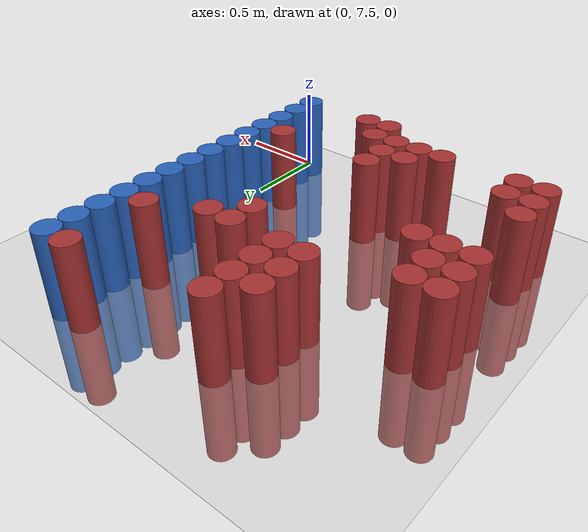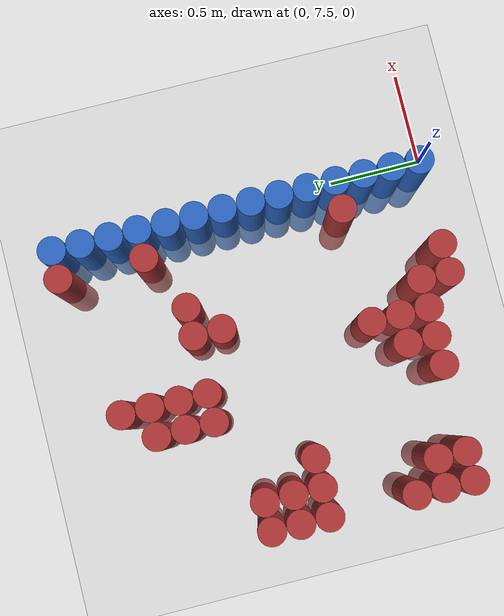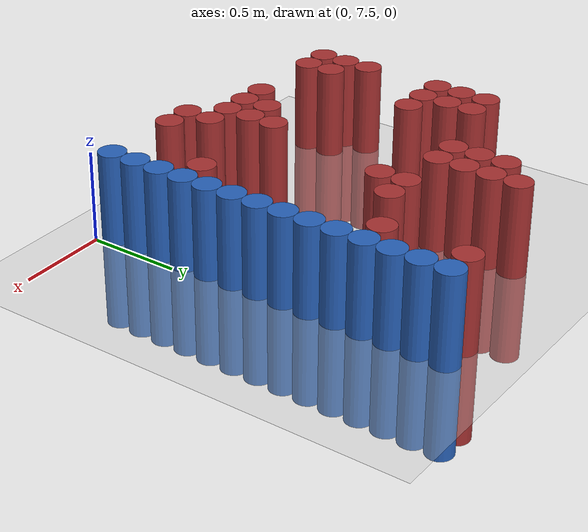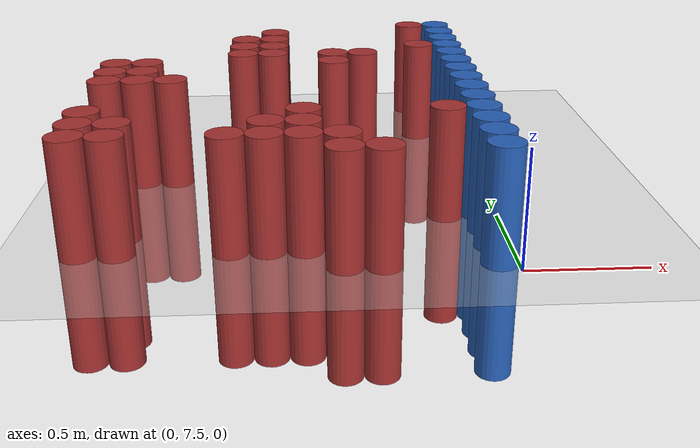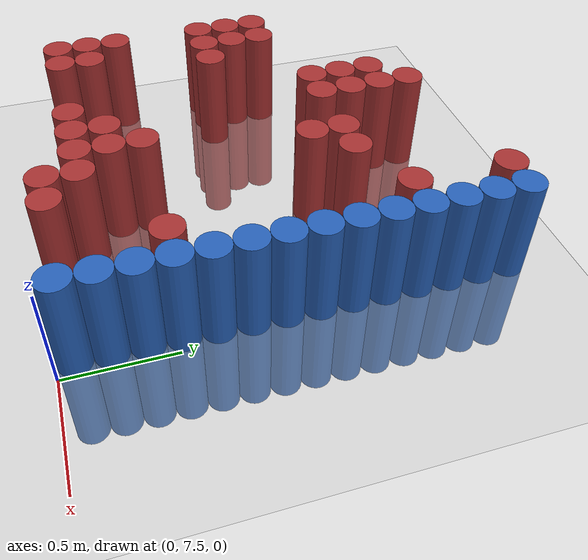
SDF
<sdf version="1.6">
 <world name="default">
  <model name="ground_plane">
   <static>1</static>
   <link name="link">
    <collision name="collision">
     <geometry><plane><normal>0 0 1</normal><size>100 100</size></plane></geometry>
     <surface><friction><ode><mu>100</mu><mu2>50</mu2></ode></friction></surface>
    </collision>
    <visual name="visual">
     <cast_shadows>0</cast_shadows>
     <geometry><plane><normal>0 0 1</normal><size>100 100</size></plane></geometry>
     <material>
      <script><uri>file://media/materials/scripts/gazebo.material</uri><name>Gazebo/Grey</name></script>
     </material>
    </visual>
   </link>
  </model>
  <model name="unit_cylinder_215">
   <static>1</static>
   <pose>-1.725000 7.725000 0.000000 0.000000 0.000000 0.000000</pose>
   <link name="link">
    <inertial>
     <mass>1</mass>
     <inertia><ixx>0.145833</ixx><ixy>0</ixy><ixz>0</ixz><iyy>0.145833</iyy><iyz>0</iyz><izz>0.125</izz></inertia>
    </inertial>
    <collision name="collision">
     <geometry><cylinder><radius>0.075000</radius><length>1</length></cylinder></geometry>
    </collision>
    <visual name="visual">
     <geometry><cylinder><radius>0.075000</radius><length>1</length></cylinder></geometry>
     <material>
      <ambient>0.648000 0.192000 0.192000 1</ambient>
      <diffuse>0.648000 0.192000 0.192000 1</diffuse>
     </material>
     <material>
      <script><name>Gazebo/Grey</name><uri>file://media/materials/scripts/gazebo.material</uri></script>
     </material>
    </visual>
   </link>
  </model>
  <model name="unit_cylinder_216">
   <static>1</static>
   <pose>-1.725000 7.875000 0.000000 0.000000 0.000000 0.000000</pose>
   <link name="link">
    <inertial>
     <mass>1</mass>
     <inertia><ixx>0.145833</ixx><ixy>0</ixy><ixz>0</ixz><iyy>0.145833</iyy><iyz>0</iyz><izz>0.125</izz></inertia>
    </inertial>
    <collision name="collision">
     <geometry><cylinder><radius>0.075000</radius><length>1</length></cylinder></geometry>
    </collision>
    <visual name="visual">
     <geometry><cylinder><radius>0.075000</radius><length>1</length></cylinder></geometry>
     <material>
      <ambient>0.648000 0.192000 0.192000 1</ambient>
      <diffuse>0.648000 0.192000 0.192000 1</diffuse>
     </material>
     <material>
      <script><name>Gazebo/Grey</name><uri>file://media/materials/scripts/gazebo.material</uri></script>
     </material>
    </visual>
   </link>
  </model>
  <model name="unit_cylinder_217">
   <static>1</static>
   <pose>-1.725000 8.025000 0.000000 0.000000 0.000000 0.000000</pose>
   <link name="link">
    <inertial>
     <mass>1</mass>
     <inertia><ixx>0.145833</ixx><ixy>0</ixy><ixz>0</ixz><iyy>0.145833</iyy><iyz>0</iyz><izz>0.125</izz></inertia>
    </inertial>
    <collision name="collision">
     <geometry><cylinder><radius>0.075000</radius><length>1</length></cylinder></geometry>
    </collision>
    <visual name="visual">
     <geometry><cylinder><radius>0.075000</radius><length>1</length></cylinder></geometry>
     <material>
      <ambient>0.648000 0.192000 0.192000 1</ambient>
      <diffuse>0.648000 0.192000 0.192000 1</diffuse>
     </material>
     <material>
      <script><name>Gazebo/Grey</name><uri>file://media/materials/scripts/gazebo.material</uri></script>
     </material>
    </visual>
   </link>
  </model>
  <model name="unit_cylinder_218">
   <static>1</static>
   <pose>-1.725000 8.475000 0.000000 0.000000 0.000000 0.000000</pose>
   <link name="link">
    <inertial>
     <mass>1</mass>
     <inertia><ixx>0.145833</ixx><ixy>0</ixy><ixz>0</ixz><iyy>0.145833</iyy><iyz>0</iyz><izz>0.125</izz></inertia>
    </inertial>
    <collision name="collision">
     <geometry><cylinder><radius>0.075000</radius><length>1</length></cylinder></geometry>
    </collision>
    <visual name="visual">
     <geometry><cylinder><radius>0.075000</radius><length>1</length></cylinder></geometry>
     <material>
      <ambient>0.648000 0.192000 0.192000 1</ambient>
      <diffuse>0.648000 0.192000 0.192000 1</diffuse>
     </material>
     <material>
      <script><name>Gazebo/Grey</name><uri>file://media/materials/scripts/gazebo.material</uri></script>
     </material>
    </visual>
   </link>
  </model>
  <model name="unit_cylinder_219">
   <static>1</static>
   <pose>-1.725000 8.625000 0.000000 0.000000 0.000000 0.000000</pose>
   <link name="link">
    <inertial>
     <mass>1</mass>
     <inertia><ixx>0.145833</ixx><ixy>0</ixy><ixz>0</ixz><iyy>0.145833</iyy><iyz>0</iyz><izz>0.125</izz></inertia>
    </inertial>
    <collision name="collision">
     <geometry><cylinder><radius>0.075000</radius><length>1</length></cylinder></geometry>
    </collision>
    <visual name="visual">
     <geometry><cylinder><radius>0.075000</radius><length>1</length></cylinder></geometry>
     <material>
      <ambient>0.648000 0.192000 0.192000 1</ambient>
      <diffuse>0.648000 0.192000 0.192000 1</diffuse>
     </material>
     <material>
      <script><name>Gazebo/Grey</name><uri>file://media/materials/scripts/gazebo.material</uri></script>
     </material>
    </visual>
   </link>
  </model>
  <model name="unit_cylinder_220">
   <static>1</static>
   <pose>-1.725000 8.775000 0.000000 0.000000 0.000000 0.000000</pose>
   <link name="link">
    <inertial>
     <mass>1</mass>
     <inertia><ixx>0.145833</ixx><ixy>0</ixy><ixz>0</ixz><iyy>0.145833</iyy><iyz>0</iyz><izz>0.125</izz></inertia>
    </inertial>
    <collision name="collision">
     <geometry><cylinder><radius>0.075000</radius><length>1</length></cylinder></geometry>
    </collision>
    <visual name="visual">
     <geometry><cylinder><radius>0.075000</radius><length>1</length></cylinder></geometry>
     <material>
      <ambient>0.648000 0.192000 0.192000 1</ambient>
      <diffuse>0.648000 0.192000 0.192000 1</diffuse>
     </material>
     <material>
      <script><name>Gazebo/Grey</name><uri>file://media/materials/scripts/gazebo.material</uri></script>
     </material>
    </visual>
   </link>
  </model>
  <model name="unit_cylinder_223">
   <static>1</static>
   <pose>-1.575000 7.725000 0.000000 0.000000 0.000000 0.000000</pose>
   <link name="link">
    <inertial>
     <mass>1</mass>
     <inertia><ixx>0.145833</ixx><ixy>0</ixy><ixz>0</ixz><iyy>0.145833</iyy><iyz>0</iyz><izz>0.125</izz></inertia>
    </inertial>
    <collision name="collision">
     <geometry><cylinder><radius>0.075000</radius><length>1</length></cylinder></geometry>
    </collision>
    <visual name="visual">
     <geometry><cylinder><radius>0.075000</radius><length>1</length></cylinder></geometry>
     <material>
      <ambient>0.648000 0.192000 0.192000 1</ambient>
      <diffuse>0.648000 0.192000 0.192000 1</diffuse>
     </material>
     <material>
      <script><name>Gazebo/Grey</name><uri>file://media/materials/scripts/gazebo.material</uri></script>
     </material>
    </visual>
   </link>
  </model>
  <model name="unit_cylinder_224">
   <static>1</static>
   <pose>-1.575000 7.875000 0.000000 0.000000 0.000000 0.000000</pose>
   <link name="link">
    <inertial>
     <mass>1</mass>
     <inertia><ixx>0.145833</ixx><ixy>0</ixy><ixz>0</ixz><iyy>0.145833</iyy><iyz>0</iyz><izz>0.125</izz></inertia>
    </inertial>
    <collision name="collision">
     <geometry><cylinder><radius>0.075000</radius><length>1</length></cylinder></geometry>
    </collision>
    <visual name="visual">
     <geometry><cylinder><radius>0.075000</radius><length>1</length></cylinder></geometry>
     <material>
      <ambient>0.648000 0.192000 0.192000 1</ambient>
      <diffuse>0.648000 0.192000 0.192000 1</diffuse>
     </material>
     <material>
      <script><name>Gazebo/Grey</name><uri>file://media/materials/scripts/gazebo.material</uri></script>
     </material>
    </visual>
   </link>
  </model>
  <model name="unit_cylinder_225">
   <static>1</static>
   <pose>-1.575000 8.475000 0.000000 0.000000 0.000000 0.000000</pose>
   <link name="link">
    <inertial>
     <mass>1</mass>
     <inertia><ixx>0.145833</ixx><ixy>0</ixy><ixz>0</ixz><iyy>0.145833</iyy><iyz>0</iyz><izz>0.125</izz></inertia>
    </inertial>
    <collision name="collision">
     <geometry><cylinder><radius>0.075000</radius><length>1</length></cylinder></geometry>
    </collision>
    <visual name="visual">
     <geometry><cylinder><radius>0.075000</radius><length>1</length></cylinder></geometry>
     <material>
      <ambient>0.648000 0.192000 0.192000 1</ambient>
      <diffuse>0.648000 0.192000 0.192000 1</diffuse>
     </material>
     <material>
      <script><name>Gazebo/Grey</name><uri>file://media/materials/scripts/gazebo.material</uri></script>
     </material>
    </visual>
   </link>
  </model>
  <model name="unit_cylinder_226">
   <static>1</static>
   <pose>-1.575000 8.625000 0.000000 0.000000 0.000000 0.000000</pose>
   <link name="link">
    <inertial>
     <mass>1</mass>
     <inertia><ixx>0.145833</ixx><ixy>0</ixy><ixz>0</ixz><iyy>0.145833</iyy><iyz>0</iyz><izz>0.125</izz></inertia>
    </inertial>
    <collision name="collision">
     <geometry><cylinder><radius>0.075000</radius><length>1</length></cylinder></geometry>
    </collision>
    <visual name="visual">
     <geometry><cylinder><radius>0.075000</radius><length>1</length></cylinder></geometry>
     <material>
      <ambient>0.648000 0.192000 0.192000 1</ambient>
      <diffuse>0.648000 0.192000 0.192000 1</diffuse>
     </material>
     <material>
      <script><name>Gazebo/Grey</name><uri>file://media/materials/scripts/gazebo.material</uri></script>
     </material>
    </visual>
   </link>
  </model>
  <model name="unit_cylinder_227">
   <static>1</static>
   <pose>-1.575000 8.775000 0.000000 0.000000 0.000000 0.000000</pose>
   <link name="link">
    <inertial>
     <mass>1</mass>
     <inertia><ixx>0.145833</ixx><ixy>0</ixy><ixz>0</ixz><iyy>0.145833</iyy><iyz>0</iyz><izz>0.125</izz></inertia>
    </inertial>
    <collision name="collision">
     <geometry><cylinder><radius>0.075000</radius><length>1</length></cylinder></geometry>
    </collision>
    <visual name="visual">
     <geometry><cylinder><radius>0.075000</radius><length>1</length></cylinder></geometry>
     <material>
      <ambient>0.648000 0.192000 0.192000 1</ambient>
      <diffuse>0.648000 0.192000 0.192000 1</diffuse>
     </material>
     <material>
      <script><name>Gazebo/Grey</name><uri>file://media/materials/scripts/gazebo.material</uri></script>
     </material>
    </visual>
   </link>
  </model>
  <model name="unit_cylinder_231">
   <static>1</static>
   <pose>-1.425000 8.475000 0.000000 0.000000 0.000000 0.000000</pose>
   <link name="link">
    <inertial>
     <mass>1</mass>
     <inertia><ixx>0.145833</ixx><ixy>0</ixy><ixz>0</ixz><iyy>0.145833</iyy><iyz>0</iyz><izz>0.125</izz></inertia>
    </inertial>
    <collision name="collision">
     <geometry><cylinder><radius>0.075000</radius><length>1</length></cylinder></geometry>
    </collision>
    <visual name="visual">
     <geometry><cylinder><radius>0.075000</radius><length>1</length></cylinder></geometry>
     <material>
      <ambient>0.648000 0.192000 0.192000 1</ambient>
      <diffuse>0.648000 0.192000 0.192000 1</diffuse>
     </material>
     <material>
      <script><name>Gazebo/Grey</name><uri>file://media/materials/scripts/gazebo.material</uri></script>
     </material>
    </visual>
   </link>
  </model>
  <model name="unit_cylinder_245">
   <static>1</static>
   <pose>-1.125000 7.725000 0.000000 0.000000 0.000000 0.000000</pose>
   <link name="link">
    <inertial>
     <mass>1</mass>
     <inertia><ixx>0.145833</ixx><ixy>0</ixy><ixz>0</ixz><iyy>0.145833</iyy><iyz>0</iyz><izz>0.125</izz></inertia>
    </inertial>
    <collision name="collision">
     <geometry><cylinder><radius>0.075000</radius><length>1</length></cylinder></geometry>
    </collision>
    <visual name="visual">
     <geometry><cylinder><radius>0.075000</radius><length>1</length></cylinder></geometry>
     <material>
      <ambient>0.648000 0.192000 0.192000 1</ambient>
      <diffuse>0.648000 0.192000 0.192000 1</diffuse>
     </material>
     <material>
      <script><name>Gazebo/Grey</name><uri>file://media/materials/scripts/gazebo.material</uri></script>
     </material>
    </visual>
   </link>
  </model>
  <model name="unit_cylinder_246">
   <static>1</static>
   <pose>-1.125000 8.925000 0.000000 0.000000 0.000000 0.000000</pose>
   <link name="link">
    <inertial>
     <mass>1</mass>
     <inertia><ixx>0.145833</ixx><ixy>0</ixy><ixz>0</ixz><iyy>0.145833</iyy><iyz>0</iyz><izz>0.125</izz></inertia>
    </inertial>
    <collision name="collision">
     <geometry><cylinder><radius>0.075000</radius><length>1</length></cylinder></geometry>
    </collision>
    <visual name="visual">
     <geometry><cylinder><radius>0.075000</radius><length>1</length></cylinder></geometry>
     <material>
      <ambient>0.648000 0.192000 0.192000 1</ambient>
      <diffuse>0.648000 0.192000 0.192000 1</diffuse>
     </material>
     <material>
      <script><name>Gazebo/Grey</name><uri>file://media/materials/scripts/gazebo.material</uri></script>
     </material>
    </visual>
   </link>
  </model>
  <model name="unit_cylinder_247">
   <static>1</static>
   <pose>-1.125000 9.075000 0.000000 0.000000 0.000000 0.000000</pose>
   <link name="link">
    <inertial>
     <mass>1</mass>
     <inertia><ixx>0.145833</ixx><ixy>0</ixy><ixz>0</ixz><iyy>0.145833</iyy><iyz>0</iyz><izz>0.125</izz></inertia>
    </inertial>
    <collision name="collision">
     <geometry><cylinder><radius>0.075000</radius><length>1</length></cylinder></geometry>
    </collision>
    <visual name="visual">
     <geometry><cylinder><radius>0.075000</radius><length>1</length></cylinder></geometry>
     <material>
      <ambient>0.648000 0.192000 0.192000 1</ambient>
      <diffuse>0.648000 0.192000 0.192000 1</diffuse>
     </material>
     <material>
      <script><name>Gazebo/Grey</name><uri>file://media/materials/scripts/gazebo.material</uri></script>
     </material>
    </visual>
   </link>
  </model>
  <model name="unit_cylinder_248">
   <static>1</static>
   <pose>-1.125000 9.225000 0.000000 0.000000 0.000000 0.000000</pose>
   <link name="link">
    <inertial>
     <mass>1</mass>
     <inertia><ixx>0.145833</ixx><ixy>0</ixy><ixz>0</ixz><iyy>0.145833</iyy><iyz>0</iyz><izz>0.125</izz></inertia>
    </inertial>
    <collision name="collision">
     <geometry><cylinder><radius>0.075000</radius><length>1</length></cylinder></geometry>
    </collision>
    <visual name="visual">
     <geometry><cylinder><radius>0.075000</radius><length>1</length></cylinder></geometry>
     <material>
      <ambient>0.648000 0.192000 0.192000 1</ambient>
      <diffuse>0.648000 0.192000 0.192000 1</diffuse>
     </material>
     <material>
      <script><name>Gazebo/Grey</name><uri>file://media/materials/scripts/gazebo.material</uri></script>
     </material>
    </visual>
   </link>
  </model>
  <model name="unit_cylinder_258">
   <static>1</static>
   <pose>-0.975000 7.725000 0.000000 0.000000 0.000000 0.000000</pose>
   <link name="link">
    <inertial>
     <mass>1</mass>
     <inertia><ixx>0.145833</ixx><ixy>0</ixy><ixz>0</ixz><iyy>0.145833</iyy><iyz>0</iyz><izz>0.125</izz></inertia>
    </inertial>
    <collision name="collision">
     <geometry><cylinder><radius>0.075000</radius><length>1</length></cylinder></geometry>
    </collision>
    <visual name="visual">
     <geometry><cylinder><radius>0.075000</radius><length>1</length></cylinder></geometry>
     <material>
      <ambient>0.648000 0.192000 0.192000 1</ambient>
      <diffuse>0.648000 0.192000 0.192000 1</diffuse>
     </material>
     <material>
      <script><name>Gazebo/Grey</name><uri>file://media/materials/scripts/gazebo.material</uri></script>
     </material>
    </visual>
   </link>
  </model>
  <model name="unit_cylinder_259">
   <static>1</static>
   <pose>-0.975000 7.875000 0.000000 0.000000 0.000000 0.000000</pose>
   <link name="link">
    <inertial>
     <mass>1</mass>
     <inertia><ixx>0.145833</ixx><ixy>0</ixy><ixz>0</ixz><iyy>0.145833</iyy><iyz>0</iyz><izz>0.125</izz></inertia>
    </inertial>
    <collision name="collision">
     <geometry><cylinder><radius>0.075000</radius><length>1</length></cylinder></geometry>
    </collision>
    <visual name="visual">
     <geometry><cylinder><radius>0.075000</radius><length>1</length></cylinder></geometry>
     <material>
      <ambient>0.648000 0.192000 0.192000 1</ambient>
      <diffuse>0.648000 0.192000 0.192000 1</diffuse>
     </material>
     <material>
      <script><name>Gazebo/Grey</name><uri>file://media/materials/scripts/gazebo.material</uri></script>
     </material>
    </visual>
   </link>
  </model>
  <model name="unit_cylinder_260">
   <static>1</static>
   <pose>-0.975000 8.925000 0.000000 0.000000 0.000000 0.000000</pose>
   <link name="link">
    <inertial>
     <mass>1</mass>
     <inertia><ixx>0.145833</ixx><ixy>0</ixy><ixz>0</ixz><iyy>0.145833</iyy><iyz>0</iyz><izz>0.125</izz></inertia>
    </inertial>
    <collision name="collision">
     <geometry><cylinder><radius>0.075000</radius><length>1</length></cylinder></geometry>
    </collision>
    <visual name="visual">
     <geometry><cylinder><radius>0.075000</radius><length>1</length></cylinder></geometry>
     <material>
      <ambient>0.648000 0.192000 0.192000 1</ambient>
      <diffuse>0.648000 0.192000 0.192000 1</diffuse>
     </material>
     <material>
      <script><name>Gazebo/Grey</name><uri>file://media/materials/scripts/gazebo.material</uri></script>
     </material>
    </visual>
   </link>
  </model>
  <model name="unit_cylinder_261">
   <static>1</static>
   <pose>-0.975000 9.075000 0.000000 0.000000 0.000000 0.000000</pose>
   <link name="link">
    <inertial>
     <mass>1</mass>
     <inertia><ixx>0.145833</ixx><ixy>0</ixy><ixz>0</ixz><iyy>0.145833</iyy><iyz>0</iyz><izz>0.125</izz></inertia>
    </inertial>
    <collision name="collision">
     <geometry><cylinder><radius>0.075000</radius><length>1</length></cylinder></geometry>
    </collision>
    <visual name="visual">
     <geometry><cylinder><radius>0.075000</radius><length>1</length></cylinder></geometry>
     <material>
      <ambient>0.648000 0.192000 0.192000 1</ambient>
      <diffuse>0.648000 0.192000 0.192000 1</diffuse>
     </material>
     <material>
      <script><name>Gazebo/Grey</name><uri>file://media/materials/scripts/gazebo.material</uri></script>
     </material>
    </visual>
   </link>
  </model>
  <model name="unit_cylinder_262">
   <static>1</static>
   <pose>-0.975000 9.225000 0.000000 0.000000 0.000000 0.000000</pose>
   <link name="link">
    <inertial>
     <mass>1</mass>
     <inertia><ixx>0.145833</ixx><ixy>0</ixy><ixz>0</ixz><iyy>0.145833</iyy><iyz>0</iyz><izz>0.125</izz></inertia>
    </inertial>
    <collision name="collision">
     <geometry><cylinder><radius>0.075000</radius><length>1</length></cylinder></geometry>
    </collision>
    <visual name="visual">
     <geometry><cylinder><radius>0.075000</radius><length>1</length></cylinder></geometry>
     <material>
      <ambient>0.648000 0.192000 0.192000 1</ambient>
      <diffuse>0.648000 0.192000 0.192000 1</diffuse>
     </material>
     <material>
      <script><name>Gazebo/Grey</name><uri>file://media/materials/scripts/gazebo.material</uri></script>
     </material>
    </visual>
   </link>
  </model>
  <model name="unit_cylinder_263">
   <static>1</static>
   <pose>-0.975000 9.375000 0.000000 0.000000 0.000000 0.000000</pose>
   <link name="link">
    <inertial>
     <mass>1</mass>
     <inertia><ixx>0.145833</ixx><ixy>0</ixy><ixz>0</ixz><iyy>0.145833</iyy><iyz>0</iyz><izz>0.125</izz></inertia>
    </inertial>
    <collision name="collision">
     <geometry><cylinder><radius>0.075000</radius><length>1</length></cylinder></geometry>
    </collision>
    <visual name="visual">
     <geometry><cylinder><radius>0.075000</radius><length>1</length></cylinder></geometry>
     <material>
      <ambient>0.648000 0.192000 0.192000 1</ambient>
      <diffuse>0.648000 0.192000 0.192000 1</diffuse>
     </material>
     <material>
      <script><name>Gazebo/Grey</name><uri>file://media/materials/scripts/gazebo.material</uri></script>
     </material>
    </visual>
   </link>
  </model>
  <model name="unit_cylinder_272">
   <static>1</static>
   <pose>-0.825000 7.725000 0.000000 0.000000 0.000000 0.000000</pose>
   <link name="link">
    <inertial>
     <mass>1</mass>
     <inertia><ixx>0.145833</ixx><ixy>0</ixy><ixz>0</ixz><iyy>0.145833</iyy><iyz>0</iyz><izz>0.125</izz></inertia>
    </inertial>
    <collision name="collision">
     <geometry><cylinder><radius>0.075000</radius><length>1</length></cylinder></geometry>
    </collision>
    <visual name="visual">
     <geometry><cylinder><radius>0.075000</radius><length>1</length></cylinder></geometry>
     <material>
      <ambient>0.648000 0.192000 0.192000 1</ambient>
      <diffuse>0.648000 0.192000 0.192000 1</diffuse>
     </material>
     <material>
      <script><name>Gazebo/Grey</name><uri>file://media/materials/scripts/gazebo.material</uri></script>
     </material>
    </visual>
   </link>
  </model>
  <model name="unit_cylinder_273">
   <static>1</static>
   <pose>-0.825000 7.875000 0.000000 0.000000 0.000000 0.000000</pose>
   <link name="link">
    <inertial>
     <mass>1</mass>
     <inertia><ixx>0.145833</ixx><ixy>0</ixy><ixz>0</ixz><iyy>0.145833</iyy><iyz>0</iyz><izz>0.125</izz></inertia>
    </inertial>
    <collision name="collision">
     <geometry><cylinder><radius>0.075000</radius><length>1</length></cylinder></geometry>
    </collision>
    <visual name="visual">
     <geometry><cylinder><radius>0.075000</radius><length>1</length></cylinder></geometry>
     <material>
      <ambient>0.648000 0.192000 0.192000 1</ambient>
      <diffuse>0.648000 0.192000 0.192000 1</diffuse>
     </material>
     <material>
      <script><name>Gazebo/Grey</name><uri>file://media/materials/scripts/gazebo.material</uri></script>
     </material>
    </visual>
   </link>
  </model>
  <model name="unit_cylinder_274">
   <static>1</static>
   <pose>-0.825000 8.025000 0.000000 0.000000 0.000000 0.000000</pose>
   <link name="link">
    <inertial>
     <mass>1</mass>
     <inertia><ixx>0.145833</ixx><ixy>0</ixy><ixz>0</ixz><iyy>0.145833</iyy><iyz>0</iyz><izz>0.125</izz></inertia>
    </inertial>
    <collision name="collision">
     <geometry><cylinder><radius>0.075000</radius><length>1</length></cylinder></geometry>
    </collision>
    <visual name="visual">
     <geometry><cylinder><radius>0.075000</radius><length>1</length></cylinder></geometry>
     <material>
      <ambient>0.648000 0.192000 0.192000 1</ambient>
      <diffuse>0.648000 0.192000 0.192000 1</diffuse>
     </material>
     <material>
      <script><name>Gazebo/Grey</name><uri>file://media/materials/scripts/gazebo.material</uri></script>
     </material>
    </visual>
   </link>
  </model>
  <model name="unit_cylinder_280">
   <static>1</static>
   <pose>-0.675000 7.575000 0.000000 0.000000 0.000000 0.000000</pose>
   <link name="link">
    <inertial>
     <mass>1</mass>
     <inertia><ixx>0.145833</ixx><ixy>0</ixy><ixz>0</ixz><iyy>0.145833</iyy><iyz>0</iyz><izz>0.125</izz></inertia>
    </inertial>
    <collision name="collision">
     <geometry><cylinder><radius>0.075000</radius><length>1</length></cylinder></geometry>
    </collision>
    <visual name="visual">
     <geometry><cylinder><radius>0.075000</radius><length>1</length></cylinder></geometry>
     <material>
      <ambient>0.648000 0.192000 0.192000 1</ambient>
      <diffuse>0.648000 0.192000 0.192000 1</diffuse>
     </material>
     <material>
      <script><name>Gazebo/Grey</name><uri>file://media/materials/scripts/gazebo.material</uri></script>
     </material>
    </visual>
   </link>
  </model>
  <model name="unit_cylinder_281">
   <static>1</static>
   <pose>-0.675000 7.725000 0.000000 0.000000 0.000000 0.000000</pose>
   <link name="link">
    <inertial>
     <mass>1</mass>
     <inertia><ixx>0.145833</ixx><ixy>0</ixy><ixz>0</ixz><iyy>0.145833</iyy><iyz>0</iyz><izz>0.125</izz></inertia>
    </inertial>
    <collision name="collision">
     <geometry><cylinder><radius>0.075000</radius><length>1</length></cylinder></geometry>
    </collision>
    <visual name="visual">
     <geometry><cylinder><radius>0.075000</radius><length>1</length></cylinder></geometry>
     <material>
      <ambient>0.648000 0.192000 0.192000 1</ambient>
      <diffuse>0.648000 0.192000 0.192000 1</diffuse>
     </material>
     <material>
      <script><name>Gazebo/Grey</name><uri>file://media/materials/scripts/gazebo.material</uri></script>
     </material>
    </visual>
   </link>
  </model>
  <model name="unit_cylinder_282">
   <static>1</static>
   <pose>-0.675000 8.775000 0.000000 0.000000 0.000000 0.000000</pose>
   <link name="link">
    <inertial>
     <mass>1</mass>
     <inertia><ixx>0.145833</ixx><ixy>0</ixy><ixz>0</ixz><iyy>0.145833</iyy><iyz>0</iyz><izz>0.125</izz></inertia>
    </inertial>
    <collision name="collision">
     <geometry><cylinder><radius>0.075000</radius><length>1</length></cylinder></geometry>
    </collision>
    <visual name="visual">
     <geometry><cylinder><radius>0.075000</radius><length>1</length></cylinder></geometry>
     <material>
      <ambient>0.648000 0.192000 0.192000 1</ambient>
      <diffuse>0.648000 0.192000 0.192000 1</diffuse>
     </material>
     <material>
      <script><name>Gazebo/Grey</name><uri>file://media/materials/scripts/gazebo.material</uri></script>
     </material>
    </visual>
   </link>
  </model>
  <model name="unit_cylinder_283">
   <static>1</static>
   <pose>-0.675000 8.925000 0.000000 0.000000 0.000000 0.000000</pose>
   <link name="link">
    <inertial>
     <mass>1</mass>
     <inertia><ixx>0.145833</ixx><ixy>0</ixy><ixz>0</ixz><iyy>0.145833</iyy><iyz>0</iyz><izz>0.125</izz></inertia>
    </inertial>
    <collision name="collision">
     <geometry><cylinder><radius>0.075000</radius><length>1</length></cylinder></geometry>
    </collision>
    <visual name="visual">
     <geometry><cylinder><radius>0.075000</radius><length>1</length></cylinder></geometry>
     <material>
      <ambient>0.648000 0.192000 0.192000 1</ambient>
      <diffuse>0.648000 0.192000 0.192000 1</diffuse>
     </material>
     <material>
      <script><name>Gazebo/Grey</name><uri>file://media/materials/scripts/gazebo.material</uri></script>
     </material>
    </visual>
   </link>
  </model>
  <model name="unit_cylinder_284">
   <static>1</static>
   <pose>-0.525000 7.575000 0.000000 0.000000 0.000000 0.000000</pose>
   <link name="link">
    <inertial>
     <mass>1</mass>
     <inertia><ixx>0.145833</ixx><ixy>0</ixy><ixz>0</ixz><iyy>0.145833</iyy><iyz>0</iyz><izz>0.125</izz></inertia>
    </inertial>
    <collision name="collision">
     <geometry><cylinder><radius>0.075000</radius><length>1</length></cylinder></geometry>
    </collision>
    <visual name="visual">
     <geometry><cylinder><radius>0.075000</radius><length>1</length></cylinder></geometry>
     <material>
      <ambient>0.648000 0.192000 0.192000 1</ambient>
      <diffuse>0.648000 0.192000 0.192000 1</diffuse>
     </material>
     <material>
      <script><name>Gazebo/Grey</name><uri>file://media/materials/scripts/gazebo.material</uri></script>
     </material>
    </visual>
   </link>
  </model>
  <model name="unit_cylinder_285">
   <static>1</static>
   <pose>-0.525000 8.925000 0.000000 0.000000 0.000000 0.000000</pose>
   <link name="link">
    <inertial>
     <mass>1</mass>
     <inertia><ixx>0.145833</ixx><ixy>0</ixy><ixz>0</ixz><iyy>0.145833</iyy><iyz>0</iyz><izz>0.125</izz></inertia>
    </inertial>
    <collision name="collision">
     <geometry><cylinder><radius>0.075000</radius><length>1</length></cylinder></geometry>
    </collision>
    <visual name="visual">
     <geometry><cylinder><radius>0.075000</radius><length>1</length></cylinder></geometry>
     <material>
      <ambient>0.648000 0.192000 0.192000 1</ambient>
      <diffuse>0.648000 0.192000 0.192000 1</diffuse>
     </material>
     <material>
      <script><name>Gazebo/Grey</name><uri>file://media/materials/scripts/gazebo.material</uri></script>
     </material>
    </visual>
   </link>
  </model>
  <model name="unit_cylinder_299">
   <static>1</static>
   <pose>-0.225000 8.025000 0.000000 0.000000 0.000000 0.000000</pose>
   <link name="link">
    <inertial>
     <mass>1</mass>
     <inertia><ixx>0.145833</ixx><ixy>0</ixy><ixz>0</ixz><iyy>0.145833</iyy><iyz>0</iyz><izz>0.125</izz></inertia>
    </inertial>
    <collision name="collision">
     <geometry><cylinder><radius>0.075000</radius><length>1</length></cylinder></geometry>
    </collision>
    <visual name="visual">
     <geometry><cylinder><radius>0.075000</radius><length>1</length></cylinder></geometry>
     <material>
      <ambient>0.648000 0.192000 0.192000 1</ambient>
      <diffuse>0.648000 0.192000 0.192000 1</diffuse>
     </material>
     <material>
      <script><name>Gazebo/Grey</name><uri>file://media/materials/scripts/gazebo.material</uri></script>
     </material>
    </visual>
   </link>
  </model>
  <model name="unit_cylinder_300">
   <static>1</static>
   <pose>-0.225000 9.075000 0.000000 0.000000 0.000000 0.000000</pose>
   <link name="link">
    <inertial>
     <mass>1</mass>
     <inertia><ixx>0.145833</ixx><ixy>0</ixy><ixz>0</ixz><iyy>0.145833</iyy><iyz>0</iyz><izz>0.125</izz></inertia>
    </inertial>
    <collision name="collision">
     <geometry><cylinder><radius>0.075000</radius><length>1</length></cylinder></geometry>
    </collision>
    <visual name="visual">
     <geometry><cylinder><radius>0.075000</radius><length>1</length></cylinder></geometry>
     <material>
      <ambient>0.648000 0.192000 0.192000 1</ambient>
      <diffuse>0.648000 0.192000 0.192000 1</diffuse>
     </material>
     <material>
      <script><name>Gazebo/Grey</name><uri>file://media/materials/scripts/gazebo.material</uri></script>
     </material>
    </visual>
   </link>
  </model>
  <model name="unit_cylinder_301">
   <static>1</static>
   <pose>-0.225000 9.525000 0.000000 0.000000 0.000000 0.000000</pose>
   <link name="link">
    <inertial>
     <mass>1</mass>
     <inertia><ixx>0.145833</ixx><ixy>0</ixy><ixz>0</ixz><iyy>0.145833</iyy><iyz>0</iyz><izz>0.125</izz></inertia>
    </inertial>
    <collision name="collision">
     <geometry><cylinder><radius>0.075000</radius><length>1</length></cylinder></geometry>
    </collision>
    <visual name="visual">
     <geometry><cylinder><radius>0.075000</radius><length>1</length></cylinder></geometry>
     <material>
      <ambient>0.648000 0.192000 0.192000 1</ambient>
      <diffuse>0.648000 0.192000 0.192000 1</diffuse>
     </material>
     <material>
      <script><name>Gazebo/Grey</name><uri>file://media/materials/scripts/gazebo.material</uri></script>
     </material>
    </visual>
   </link>
  </model>
  <model name="unit_cylinder_318">
   <static>1</static>
   <pose>-0.075000 7.575000 0.000000 0.000000 0.000000 0.000000</pose>
   <link name="link">
    <inertial>
     <mass>1</mass>
     <inertia><ixx>0.145833</ixx><ixy>0</ixy><ixz>0</ixz><iyy>0.145833</iyy><iyz>0</iyz><izz>0.125</izz></inertia>
    </inertial>
    <collision name="collision">
     <geometry><cylinder><radius>0.075000</radius><length>1</length></cylinder></geometry>
    </collision>
    <visual name="visual">
     <geometry><cylinder><radius>0.075000</radius><length>1</length></cylinder></geometry>
     <material>
      <ambient>0.152000 0.379000 0.720000 1</ambient>
      <diffuse>0.152000 0.379000 0.720000 1</diffuse>
     </material>
     <material>
      <script><name>Gazebo/Grey</name><uri>file://media/materials/scripts/gazebo.material</uri></script>
     </material>
    </visual>
   </link>
  </model>
  <model name="unit_cylinder_319">
   <static>1</static>
   <pose>-0.075000 7.725000 0.000000 0.000000 0.000000 0.000000</pose>
   <link name="link">
    <inertial>
     <mass>1</mass>
     <inertia><ixx>0.145833</ixx><ixy>0</ixy><ixz>0</ixz><iyy>0.145833</iyy><iyz>0</iyz><izz>0.125</izz></inertia>
    </inertial>
    <collision name="collision">
     <geometry><cylinder><radius>0.075000</radius><length>1</length></cylinder></geometry>
    </collision>
    <visual name="visual">
     <geometry><cylinder><radius>0.075000</radius><length>1</length></cylinder></geometry>
     <material>
      <ambient>0.152000 0.379000 0.720000 1</ambient>
      <diffuse>0.152000 0.379000 0.720000 1</diffuse>
     </material>
     <material>
      <script><name>Gazebo/Grey</name><uri>file://media/materials/scripts/gazebo.material</uri></script>
     </material>
    </visual>
   </link>
  </model>
  <model name="unit_cylinder_320">
   <static>1</static>
   <pose>-0.075000 7.875000 0.000000 0.000000 0.000000 0.000000</pose>
   <link name="link">
    <inertial>
     <mass>1</mass>
     <inertia><ixx>0.145833</ixx><ixy>0</ixy><ixz>0</ixz><iyy>0.145833</iyy><iyz>0</iyz><izz>0.125</izz></inertia>
    </inertial>
    <collision name="collision">
     <geometry><cylinder><radius>0.075000</radius><length>1</length></cylinder></geometry>
    </collision>
    <visual name="visual">
     <geometry><cylinder><radius>0.075000</radius><length>1</length></cylinder></geometry>
     <material>
      <ambient>0.152000 0.379000 0.720000 1</ambient>
      <diffuse>0.152000 0.379000 0.720000 1</diffuse>
     </material>
     <material>
      <script><name>Gazebo/Grey</name><uri>file://media/materials/scripts/gazebo.material</uri></script>
     </material>
    </visual>
   </link>
  </model>
  <model name="unit_cylinder_321">
   <static>1</static>
   <pose>-0.075000 8.025000 0.000000 0.000000 0.000000 0.000000</pose>
   <link name="link">
    <inertial>
     <mass>1</mass>
     <inertia><ixx>0.145833</ixx><ixy>0</ixy><ixz>0</ixz><iyy>0.145833</iyy><iyz>0</iyz><izz>0.125</izz></inertia>
    </inertial>
    <collision name="collision">
     <geometry><cylinder><radius>0.075000</radius><length>1</length></cylinder></geometry>
    </collision>
    <visual name="visual">
     <geometry><cylinder><radius>0.075000</radius><length>1</length></cylinder></geometry>
     <material>
      <ambient>0.152000 0.379000 0.720000 1</ambient>
      <diffuse>0.152000 0.379000 0.720000 1</diffuse>
     </material>
     <material>
      <script><name>Gazebo/Grey</name><uri>file://media/materials/scripts/gazebo.material</uri></script>
     </material>
    </visual>
   </link>
  </model>
  <model name="unit_cylinder_322">
   <static>1</static>
   <pose>-0.075000 8.175000 0.000000 0.000000 0.000000 0.000000</pose>
   <link name="link">
    <inertial>
     <mass>1</mass>
     <inertia><ixx>0.145833</ixx><ixy>0</ixy><ixz>0</ixz><iyy>0.145833</iyy><iyz>0</iyz><izz>0.125</izz></inertia>
    </inertial>
    <collision name="collision">
     <geometry><cylinder><radius>0.075000</radius><length>1</length></cylinder></geometry>
    </collision>
    <visual name="visual">
     <geometry><cylinder><radius>0.075000</radius><length>1</length></cylinder></geometry>
     <material>
      <ambient>0.152000 0.379000 0.720000 1</ambient>
      <diffuse>0.152000 0.379000 0.720000 1</diffuse>
     </material>
     <material>
      <script><name>Gazebo/Grey</name><uri>file://media/materials/scripts/gazebo.material</uri></script>
     </material>
    </visual>
   </link>
  </model>
  <model name="unit_cylinder_323">
   <static>1</static>
   <pose>-0.075000 8.325000 0.000000 0.000000 0.000000 0.000000</pose>
   <link name="link">
    <inertial>
     <mass>1</mass>
     <inertia><ixx>0.145833</ixx><ixy>0</ixy><ixz>0</ixz><iyy>0.145833</iyy><iyz>0</iyz><izz>0.125</izz></inertia>
    </inertial>
    <collision name="collision">
     <geometry><cylinder><radius>0.075000</radius><length>1</length></cylinder></geometry>
    </collision>
    <visual name="visual">
     <geometry><cylinder><radius>0.075000</radius><length>1</length></cylinder></geometry>
     <material>
      <ambient>0.152000 0.379000 0.720000 1</ambient>
      <diffuse>0.152000 0.379000 0.720000 1</diffuse>
     </material>
     <material>
      <script><name>Gazebo/Grey</name><uri>file://media/materials/scripts/gazebo.material</uri></script>
     </material>
    </visual>
   </link>
  </model>
  <model name="unit_cylinder_324">
   <static>1</static>
   <pose>-0.075000 8.475000 0.000000 0.000000 0.000000 0.000000</pose>
   <link name="link">
    <inertial>
     <mass>1</mass>
     <inertia><ixx>0.145833</ixx><ixy>0</ixy><ixz>0</ixz><iyy>0.145833</iyy><iyz>0</iyz><izz>0.125</izz></inertia>
    </inertial>
    <collision name="collision">
     <geometry><cylinder><radius>0.075000</radius><length>1</length></cylinder></geometry>
    </collision>
    <visual name="visual">
     <geometry><cylinder><radius>0.075000</radius><length>1</length></cylinder></geometry>
     <material>
      <ambient>0.152000 0.379000 0.720000 1</ambient>
      <diffuse>0.152000 0.379000 0.720000 1</diffuse>
     </material>
     <material>
      <script><name>Gazebo/Grey</name><uri>file://media/materials/scripts/gazebo.material</uri></script>
     </material>
    </visual>
   </link>
  </model>
  <model name="unit_cylinder_325">
   <static>1</static>
   <pose>-0.075000 8.625000 0.000000 0.000000 0.000000 0.000000</pose>
   <link name="link">
    <inertial>
     <mass>1</mass>
     <inertia><ixx>0.145833</ixx><ixy>0</ixy><ixz>0</ixz><iyy>0.145833</iyy><iyz>0</iyz><izz>0.125</izz></inertia>
    </inertial>
    <collision name="collision">
     <geometry><cylinder><radius>0.075000</radius><length>1</length></cylinder></geometry>
    </collision>
    <visual name="visual">
     <geometry><cylinder><radius>0.075000</radius><length>1</length></cylinder></geometry>
     <material>
      <ambient>0.152000 0.379000 0.720000 1</ambient>
      <diffuse>0.152000 0.379000 0.720000 1</diffuse>
     </material>
     <material>
      <script><name>Gazebo/Grey</name><uri>file://media/materials/scripts/gazebo.material</uri></script>
     </material>
    </visual>
   </link>
  </model>
  <model name="unit_cylinder_326">
   <static>1</static>
   <pose>-0.075000 8.775000 0.000000 0.000000 0.000000 0.000000</pose>
   <link name="link">
    <inertial>
     <mass>1</mass>
     <inertia><ixx>0.145833</ixx><ixy>0</ixy><ixz>0</ixz><iyy>0.145833</iyy><iyz>0</iyz><izz>0.125</izz></inertia>
    </inertial>
    <collision name="collision">
     <geometry><cylinder><radius>0.075000</radius><length>1</length></cylinder></geometry>
    </collision>
    <visual name="visual">
     <geometry><cylinder><radius>0.075000</radius><length>1</length></cylinder></geometry>
     <material>
      <ambient>0.152000 0.379000 0.720000 1</ambient>
      <diffuse>0.152000 0.379000 0.720000 1</diffuse>
     </material>
     <material>
      <script><name>Gazebo/Grey</name><uri>file://media/materials/scripts/gazebo.material</uri></script>
     </material>
    </visual>
   </link>
  </model>
  <model name="unit_cylinder_327">
   <static>1</static>
   <pose>-0.075000 8.925000 0.000000 0.000000 0.000000 0.000000</pose>
   <link name="link">
    <inertial>
     <mass>1</mass>
     <inertia><ixx>0.145833</ixx><ixy>0</ixy><ixz>0</ixz><iyy>0.145833</iyy><iyz>0</iyz><izz>0.125</izz></inertia>
    </inertial>
    <collision name="collision">
     <geometry><cylinder><radius>0.075000</radius><length>1</length></cylinder></geometry>
    </collision>
    <visual name="visual">
     <geometry><cylinder><radius>0.075000</radius><length>1</length></cylinder></geometry>
     <material>
      <ambient>0.152000 0.379000 0.720000 1</ambient>
      <diffuse>0.152000 0.379000 0.720000 1</diffuse>
     </material>
     <material>
      <script><name>Gazebo/Grey</name><uri>file://media/materials/scripts/gazebo.material</uri></script>
     </material>
    </visual>
   </link>
  </model>
  <model name="unit_cylinder_328">
   <static>1</static>
   <pose>-0.075000 9.075000 0.000000 0.000000 0.000000 0.000000</pose>
   <link name="link">
    <inertial>
     <mass>1</mass>
     <inertia><ixx>0.145833</ixx><ixy>0</ixy><ixz>0</ixz><iyy>0.145833</iyy><iyz>0</iyz><izz>0.125</izz></inertia>
    </inertial>
    <collision name="collision">
     <geometry><cylinder><radius>0.075000</radius><length>1</length></cylinder></geometry>
    </collision>
    <visual name="visual">
     <geometry><cylinder><radius>0.075000</radius><length>1</length></cylinder></geometry>
     <material>
      <ambient>0.152000 0.379000 0.720000 1</ambient>
      <diffuse>0.152000 0.379000 0.720000 1</diffuse>
     </material>
     <material>
      <script><name>Gazebo/Grey</name><uri>file://media/materials/scripts/gazebo.material</uri></script>
     </material>
    </visual>
   </link>
  </model>
  <model name="unit_cylinder_329">
   <static>1</static>
   <pose>-0.075000 9.225000 0.000000 0.000000 0.000000 0.000000</pose>
   <link name="link">
    <inertial>
     <mass>1</mass>
     <inertia><ixx>0.145833</ixx><ixy>0</ixy><ixz>0</ixz><iyy>0.145833</iyy><iyz>0</iyz><izz>0.125</izz></inertia>
    </inertial>
    <collision name="collision">
     <geometry><cylinder><radius>0.075000</radius><length>1</length></cylinder></geometry>
    </collision>
    <visual name="visual">
     <geometry><cylinder><radius>0.075000</radius><length>1</length></cylinder></geometry>
     <material>
      <ambient>0.152000 0.379000 0.720000 1</ambient>
      <diffuse>0.152000 0.379000 0.720000 1</diffuse>
     </material>
     <material>
      <script><name>Gazebo/Grey</name><uri>file://media/materials/scripts/gazebo.material</uri></script>
     </material>
    </visual>
   </link>
  </model>
  <model name="unit_cylinder_330">
   <static>1</static>
   <pose>-0.075000 9.375000 0.000000 0.000000 0.000000 0.000000</pose>
   <link name="link">
    <inertial>
     <mass>1</mass>
     <inertia><ixx>0.145833</ixx><ixy>0</ixy><ixz>0</ixz><iyy>0.145833</iyy><iyz>0</iyz><izz>0.125</izz></inertia>
    </inertial>
    <collision name="collision">
     <geometry><cylinder><radius>0.075000</radius><length>1</length></cylinder></geometry>
    </collision>
    <visual name="visual">
     <geometry><cylinder><radius>0.075000</radius><length>1</length></cylinder></geometry>
     <material>
      <ambient>0.152000 0.379000 0.720000 1</ambient>
      <diffuse>0.152000 0.379000 0.720000 1</diffuse>
     </material>
     <material>
      <script><name>Gazebo/Grey</name><uri>file://media/materials/scripts/gazebo.material</uri></script>
     </material>
    </visual>
   </link>
  </model>
  <model name="unit_cylinder_331">
   <static>1</static>
   <pose>-0.075000 9.525000 0.000000 0.000000 0.000000 0.000000</pose>
   <link name="link">
    <inertial>
     <mass>1</mass>
     <inertia><ixx>0.145833</ixx><ixy>0</ixy><ixz>0</ixz><iyy>0.145833</iyy><iyz>0</iyz><izz>0.125</izz></inertia>
    </inertial>
    <collision name="collision">
     <geometry><cylinder><radius>0.075000</radius><length>1</length></cylinder></geometry>
    </collision>
    <visual name="visual">
     <geometry><cylinder><radius>0.075000</radius><length>1</length></cylinder></geometry>
     <material>
      <ambient>0.152000 0.379000 0.720000 1</ambient>
      <diffuse>0.152000 0.379000 0.720000 1</diffuse>
     </material>
     <material>
      <script><name>Gazebo/Grey</name><uri>file://media/materials/scripts/gazebo.material</uri></script>
     </material>
    </visual>
   </link>
  </model>
 </world>
</sdf>
